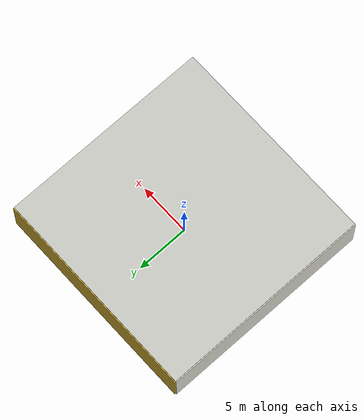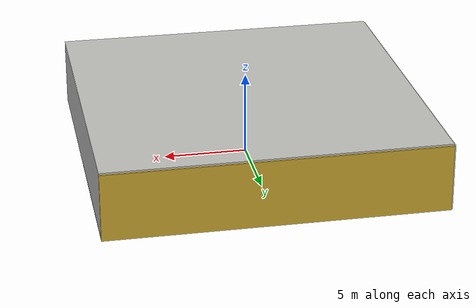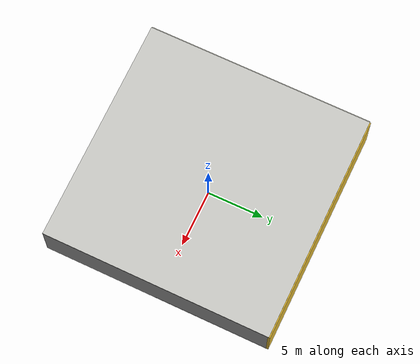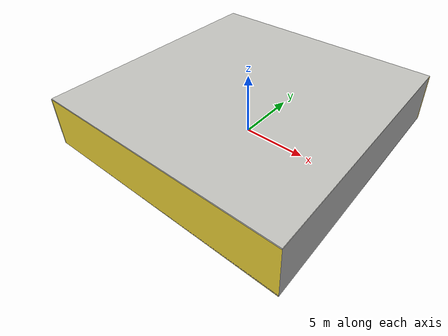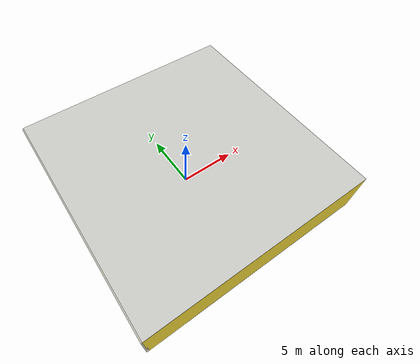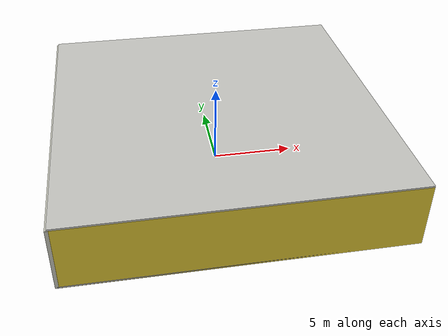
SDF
<sdf version="1.4">
 <world name="default">
  <physics type="ode">
   <max_step_size>0.001</max_step_size>
   <real_time_factor>1</real_time_factor>
   <real_time_update_rate>1000</real_time_update_rate>
   <gravity>0 0 -9.8</gravity>
  </physics>
  <scene><ambient>0.4 0.4 0.4 1</ambient><background>0.7 0.7 0.7 1</background><shadows>1</shadows></scene>
  <model name="Surrounding">
   <static>1</static>
   <link name="Ceiling">
    <collision name="Ceiling_Collision"><geometry><box><size>20 20 0.1</size></box></geometry></collision>
    <visual name="Ceiling_Visual">
     <geometry><box><size>20 20 0.1</size></box></geometry>
     <material>
      <script><uri>file://media/materials/scripts/gazebo.material</uri><name>Gazebo/CeilingTiled</name></script>
     </material>
    </visual>
    <pose>0 0 4.05 0 0 0</pose>
   </link>
   <link name="Wall_South">
    <collision name="Wall_South_Collision">
     <geometry><box><size>20 0 4</size></box></geometry>
     <pose>0 0 2 0 -0 0</pose>
    </collision>
    <visual name="Wall_South_Visual">
     <pose>0 0 2 0 -0 0</pose>
     <geometry><box><size>20 0 4</size></box></geometry>
     <material>
      <script><uri>file://media/materials/scripts/gazebo.material</uri><name>Gazebo/ZincYellow</name></script>
     </material>
    </visual>
    <velocity_decay><linear>0</linear><angular>0</angular></velocity_decay>
    <pose>0 -10 0 0 -0 0</pose>
   </link>
   <link name="Wall_East">
    <collision name="Wall_21_Collision">
     <geometry><box><size>20 0 4</size></box></geometry>
     <pose>0 0 2 0 -0 0</pose>
    </collision>
    <visual name="Wall_21_Visual">
     <pose>0 0 2 0 -0 0</pose>
     <geometry><box><size>20 0 4</size></box></geometry>
     <material>
      <script><uri>file://media/materials/scripts/gazebo.material</uri><name>Gazebo/Grey</name></script>
     </material>
    </visual>
    <velocity_decay><linear>0</linear><angular>0</angular></velocity_decay>
    <pose>10 0 0 0 -0 1.5708</pose>
   </link>
   <link name="Wall_North">
    <collision name="Wall_22_Collision">
     <geometry><box><size>20 0.2 4</size></box></geometry>
     <pose>0 0 2 0 -0 0</pose>
    </collision>
    <visual name="Wall_22_Visual">
     <pose>0 0 2 0 -0 0</pose>
     <geometry><box><size>20 0.2 4</size></box></geometry>
     <material>
      <script><uri>file://media/materials/scripts/gazebo.material</uri><name>Gazebo/Gold</name></script>
     </material>
    </visual>
    <velocity_decay><linear>0</linear><angular>0</angular></velocity_decay>
    <pose>0 10 0 0 -0 0</pose>
   </link>
   <link name="Wall_West">
    <collision name="Wall_23_Collision">
     <geometry><box><size>20 0.2 4</size></box></geometry>
     <pose>0 0 2 0 -0 0</pose>
    </collision>
    <visual name="Wall_23_Visual">
     <pose>0 0 2 0 -0 0</pose>
     <geometry><box><size>20 0.2 4</size></box></geometry>
     <material>
      <script><uri>file://media/materials/scripts/gazebo.material</uri><name>Gazebo/PaintedWall</name></script>
     </material>
    </visual>
    <velocity_decay><linear>0</linear><angular>0</angular></velocity_decay>
    <pose>-10 0 0 0 0 -1.5708</pose>
   </link>
   <link name="Ground_link">
    <collision name="collision">
     <pose>0 0 .05 0 -0 0</pose>
     <geometry><box><size>20 20 0.1</size></box></geometry>
    </collision>
    <visual name="visual">
     <pose>0 0 .05 0 -0 0</pose>
     <geometry><box><size>20 20 0.1</size></box></geometry>
     <material>
      <script><uri>file://media/materials/scripts/gazebo.material</uri><name>Gazebo/JointAnchor</name></script>
     </material>
    </visual>
   </link>
   <static>1</static>
  </model>
  <spherical_coordinates>
   <surface_model>EARTH_WGS84</surface_model>
   <latitude_deg>0</latitude_deg>
   <longitude_deg>0</longitude_deg>
   <elevation>0</elevation>
   <heading_deg>0</heading_deg>
  </spherical_coordinates>
  <light name="lightball_0" type="diffuse">
   <diffuse>0.8 0.8 0.8 1</diffuse>
   <specular>0.2 0.2 0.2 1</specular>
   <attenuation>
    <range>100</range>
    <constant>0.7</constant>
    <linear>0.01</linear>
    <quadratic>0.001</quadratic>
   </attenuation>
   <direction>-0.5 0.1 -0.9</direction>
   <pose>-4.32961879539 0.0487048703503 2.83184161495 0 0 0</pose>
  </light>
  <light name="lightball_1" type="diffuse">
   <diffuse>0.8 0.8 0.8 1</diffuse>
   <specular>0.2 0.2 0.2 1</specular>
   <attenuation>
    <range>100</range>
    <constant>0.7</constant>
    <linear>0.01</linear>
    <quadratic>0.001</quadratic>
   </attenuation>
   <direction>-0.5 0.1 -0.9</direction>
   <pose>9.22552675762 -1.83860315657 1.5670307845 0 0 0</pose>
  </light>
  <light name="lightball_2" type="diffuse">
   <diffuse>0.8 0.8 0.8 1</diffuse>
   <specular>0.2 0.2 0.2 1</specular>
   <attenuation>
    <range>100</range>
    <constant>0.7</constant>
    <linear>0.01</linear>
    <quadratic>0.001</quadratic>
   </attenuation>
   <direction>-0.5 0.1 -0.9</direction>
   <pose>8.84566820284 -0.345834226652 0.637208647596 0 0 0</pose>
  </light>
  <light name="lightball_3" type="diffuse">
   <diffuse>0.8 0.8 0.8 1</diffuse>
   <specular>0.2 0.2 0.2 1</specular>
   <attenuation>
    <range>100</range>
    <constant>0.7</constant>
    <linear>0.01</linear>
    <quadratic>0.001</quadratic>
   </attenuation>
   <direction>-0.5 0.1 -0.9</direction>
   <pose>8.84789512285 4.00175048347 0.649441836011 0 0 0</pose>
  </light>
  <light name="lightball_4" type="diffuse">
   <diffuse>0.8 0.8 0.8 1</diffuse>
   <specular>0.2 0.2 0.2 1</specular>
   <attenuation>
    <range>100</range>
    <constant>0.7</constant>
    <linear>0.01</linear>
    <quadratic>0.001</quadratic>
   </attenuation>
   <direction>-0.5 0.1 -0.9</direction>
   <pose>-1.39864647729 1.85327044379 0.995094246402 0 0 0</pose>
  </light>
  <light name="lightball_5" type="diffuse">
   <diffuse>0.8 0.8 0.8 1</diffuse>
   <specular>0.2 0.2 0.2 1</specular>
   <attenuation>
    <range>100</range>
    <constant>0.7</constant>
    <linear>0.01</linear>
    <quadratic>0.001</quadratic>
   </attenuation>
   <direction>-0.5 0.1 -0.9</direction>
   <pose>0.919005284995 -3.78058922762 3.17647745422 0 0 0</pose>
  </light>
  <light name="lightball_6" type="diffuse">
   <diffuse>0.8 0.8 0.8 1</diffuse>
   <specular>0.2 0.2 0.2 1</specular>
   <attenuation>
    <range>100</range>
    <constant>0.7</constant>
    <linear>0.01</linear>
    <quadratic>0.001</quadratic>
   </attenuation>
   <direction>-0.5 0.1 -0.9</direction>
   <pose>-3.19436807472 -3.44370451397 3.00282258037 0 0 0</pose>
  </light>
  <light name="lightball_7" type="diffuse">
   <diffuse>0.8 0.8 0.8 1</diffuse>
   <specular>0.2 0.2 0.2 1</specular>
   <attenuation>
    <range>100</range>
    <constant>0.7</constant>
    <linear>0.01</linear>
    <quadratic>0.001</quadratic>
   </attenuation>
   <direction>-0.5 0.1 -0.9</direction>
   <pose>0.782240120877 -1.48782500601 2.34532927076 0 0 0</pose>
  </light>
  <light name="lightball_8" type="diffuse">
   <diffuse>0.8 0.8 0.8 1</diffuse>
   <specular>0.2 0.2 0.2 1</specular>
   <attenuation>
    <range>100</range>
    <constant>0.7</constant>
    <linear>0.01</linear>
    <quadratic>0.001</quadratic>
   </attenuation>
   <direction>-0.5 0.1 -0.9</direction>
   <pose>-5.55590305783 -0.31752940142 2.28289944513 0 0 0</pose>
  </light>
  <light name="lightball_9" type="diffuse">
   <diffuse>0.8 0.8 0.8 1</diffuse>
   <specular>0.2 0.2 0.2 1</specular>
   <attenuation>
    <range>100</range>
    <constant>0.7</constant>
    <linear>0.01</linear>
    <quadratic>0.001</quadratic>
   </attenuation>
   <direction>-0.5 0.1 -0.9</direction>
   <pose>-4.89573411594 -3.59761194285 1.15986479441 0 0 0</pose>
  </light>
  <light name="lightball_10" type="diffuse">
   <diffuse>0.8 0.8 0.8 1</diffuse>
   <specular>0.2 0.2 0.2 1</specular>
   <attenuation>
    <range>100</range>
    <constant>0.7</constant>
    <linear>0.01</linear>
    <quadratic>0.001</quadratic>
   </attenuation>
   <direction>-0.5 0.1 -0.9</direction>
   <pose>-4.35246178873 5.58232112746 1.78775524903 0 0 0</pose>
  </light>
  <include>
   <uri>model://textured_shapes</uri>
   <pose>-7.88941267344 -7.4465200718 0 0 0 0.41572124275</pose>
  </include>
  <include><uri>model://cabinet</uri><pose>-7.92325165932 -1.92971237814 0 0 0 1.55164220757</pose></include>
  <include><uri>model://cabinet</uri><pose>-3.88314063003 -7.35753387527 0 0 0 1.12913419132</pose></include>
  <include>
   <uri>model://construction_cone</uri>
   <pose>1.86764364102 1.63641195288 0 0 0 2.43014218174</pose>
  </include>
  <include>
   <uri>model://textured_shapes</uri>
   <pose>4.86181758001 -7.0326588152 0 0 0 1.09010814936</pose>
  </include>
  <include>
   <uri>model://construction_cone</uri>
   <pose>4.9465561536 -1.77879877893 0 0 0 0.550553873868</pose>
  </include>
 </world>
</sdf>

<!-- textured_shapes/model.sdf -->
<sdf version="1.6">
  <model name="textured_shapes">
    <pose>0 0 0.5 0 0 0</pose>
    <link name="box">
      <pose>0 -1.5 0 0 0 0</pose>
      <collision name="collision">
        <geometry>
          <box>
            <size>1 1 1</size>
          </box>
        </geometry>
      </collision>
      <visual name="visual">
        <geometry>
          <box>
            <size>1 1 1</size>
          </box>
        </geometry>
        <material>
          <script>
            <uri>model://../model_source/models/textured_shapes/materials/scripts</uri>
            <uri>model://../model_source/models/textured_shapes/materials/textures</uri>
            <name>TexturedShape/Squares</name>
          </script>
        </material>
      </visual>
    </link>
    <link name="sphere">
      <collision name="collision">
        <geometry>
          <sphere>
            <radius>0.5</radius>
          </sphere>
        </geometry>
      </collision>
      <visual name="visual">
        <geometry>
          <sphere>
            <radius>0.5</radius>
          </sphere>
        </geometry>
        <material>
          <script>
            <uri>model://../model_source/models/textured_shapes/materials/scripts</uri>
            <uri>model://../model_source/models/textured_shapes/materials/textures</uri>
            <name>TexturedShape/Squares</name>
          </script>
        </material>
      </visual>
    </link>
    <link name="cylinder">
      <pose>0 1.5 0 0 0 0</pose>
      <collision name="collision">
        <geometry>
          <cylinder>
            <radius>0.5</radius>
            <length>1</length>
          </cylinder>
        </geometry>
      </collision>
      <visual name="visual">
        <geometry>
          <cylinder>
            <radius>0.5</radius>
            <length>1</length>
          </cylinder>
        </geometry>
        <material>
          <script>
            <uri>model://../model_source/models/textured_shapes/materials/scripts</uri>
            <uri>model://../model_source/models/textured_shapes/materials/textures</uri>
            <name>TexturedShape/Squares</name>
          </script>
        </material>
      </visual>
    </link>
  </model>
</sdf>

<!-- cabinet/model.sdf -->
<sdf version="1.5">
  <model name="cabinet">
    <static>true</static>
    <link name="cabinet_bottom_plate">
      <inertial>
        <pose>0 0 -1 0 0 0</pose>
        <inertia>
          <ixx>2.050000</ixx>
          <ixy>0</ixy>
          <ixz>0</ixz>
          <iyy>2.050000</iyy>
          <iyz>0</iyz>
          <izz>2.050000</izz>
        </inertia>
        <mass>25.000000</mass>
      </inertial>
      <collision name="cabinet_bottom_plate_geom">
        <pose>0 0 0.010000 0 0 0</pose>
        <geometry>
          <box>
            <size>0.450000 0.450000 0.020000</size>
          </box>
        </geometry>
      </collision>
      <visual name="cabinet_bottom_plate_geom_visual">
        <pose>0 0 0.010000 0 0 0</pose>
        <geometry>
          <box>
            <size>0.450000 0.450000 0.020000</size>
          </box>
        </geometry>
        <material>
          <script>
            <uri>model://media/materials/scripts/gazebo.material</uri>
            <name>Gazebo/Wood</name>
          </script>
        </material>
      </visual>
      <collision name="cabinet_bottom_plate_geom_cabinet_back_plate">
        <pose>0.235000 0 0.510000 0 0 0</pose>
        <geometry>
          <box>
            <size>0.020000 0.450000 1.020000</size>
          </box>
        </geometry>
      </collision>
      <visual name="cabinet_bottom_plate_geom_cabinet_back_plate_visual">
        <pose>0.235000 0 0.510000 0 0 0</pose>
        <geometry>
          <box>
            <size>0.020000 0.450000 1.020000</size>
          </box>
        </geometry>
        <material>
          <script>
            <uri>model://media/materials/scripts/gazebo.material</uri>
            <name>Gazebo/Wood</name>
          </script>
        </material>
      </visual>
      <collision name="cabinet_bottom_plate_geom_cabinet_left_plate">
        <pose>0 0.235000 0.510000 0 0 0</pose>
        <geometry>
          <box>
            <size>0.450000 0.020000 1.020000</size>
          </box>
        </geometry>
      </collision>
      <visual name="cabinet_bottom_plate_geom_cabinet_left_plate_visual">
        <pose>0 0.235000 0.510000 0 0 0</pose>
        <geometry>
          <box>
            <size>0.450000 0.020000 1.020000</size>
          </box>
        </geometry>
        <material>
          <script>
            <uri>model://media/materials/scripts/gazebo.material</uri>
            <name>Gazebo/Wood</name>
          </script>
        </material>
      </visual>
      <collision name="cabinet_bottom_plate_geom_cabinet_middle_plate">
        <pose>0 0 0.510000 0 0 0</pose>
        <geometry>
          <box>
            <size>0.450000 0.450000 0.020000</size>
          </box>
        </geometry>
      </collision>
      <visual name="cabinet_bottom_plate_geom_cabinet_middle_plate_visual">
        <pose>0 0 0.510000 0 0 0</pose>
        <geometry>
          <box>
            <size>0.450000 0.450000 0.020000</size>
          </box>
        </geometry>
        <material>
          <script>
            <uri>model://media/materials/scripts/gazebo.material</uri>
            <name>Gazebo/Wood</name>
          </script>
        </material>
      </visual>
      <collision name="cabinet_bottom_plate_geom_cabinet_right_plate">
        <pose>0 -0.235000 0.510000 0 0 0</pose>
        <geometry>
          <box>
            <size>0.450000 0.020000 1.020000</size>
          </box>
        </geometry>
      </collision>
      <visual name="cabinet_bottom_plate_geom_cabinet_right_plate_visual">
        <pose>0 -0.235000 0.510000 0 0 0</pose>
        <geometry>
          <box>
            <size>0.450000 0.020000 1.020000</size>
          </box>
        </geometry>
        <material>
          <script>
            <uri>model://media/materials/scripts/gazebo.material</uri>
            <name>Gazebo/Wood</name>
          </script>
        </material>
      </visual>
      <collision name="cabinet_bottom_plate_geom_cabinet_top_plate">
        <pose>0 0 1.010000 0 0 0</pose>
        <geometry>
          <box>
            <size>0.450000 0.450000 0.020000</size>
          </box>
        </geometry>
      </collision>
      <visual name="cabinet_bottom_plate_geom_cabinet_top_plate_visual">
        <pose>0 0 1.010000 0 0 0</pose>
        <geometry>
          <box>
            <size>0.450000 0.450000 0.020000</size>
          </box>
        </geometry>
        <material>
          <script>
            <uri>model://media/materials/scripts/gazebo.material</uri>
            <name>Gazebo/Wood</name>
          </script>
        </material>
      </visual>
    </link>
  </model>
</sdf>

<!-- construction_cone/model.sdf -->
<sdf version="1.5">
  <model name="Construction Cone">
    <link name="link">
      <collision name="collision">
        <geometry>
          <mesh>
            <scale>10 10 10</scale>
            <uri>file://isr-testbed/construction_cone/meshes/construction_cone.dae</uri>
          </mesh>
        </geometry>
      </collision>
      <visual name="visual">
        <geometry>
          <mesh>
            <scale>10 10 10</scale>
            <uri>file://isr-testbed/construction_cone/meshes/construction_cone.dae</uri>
          </mesh>
        </geometry>
      </visual>
    </link>
  </model>
</sdf>
